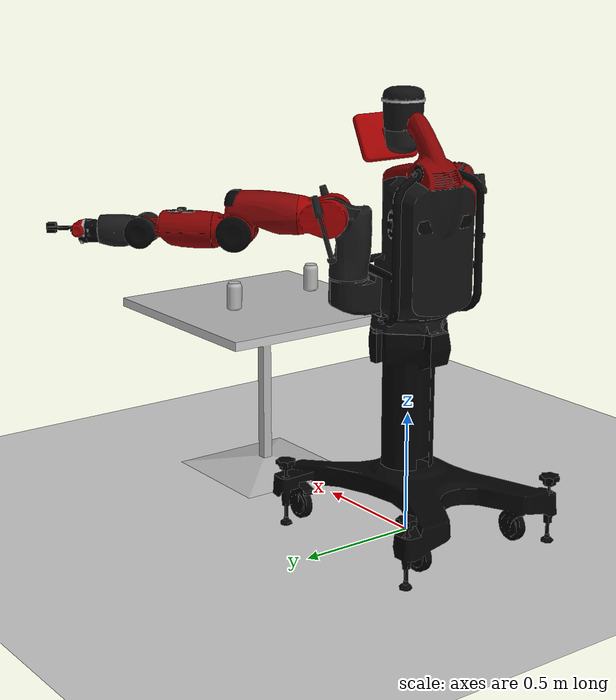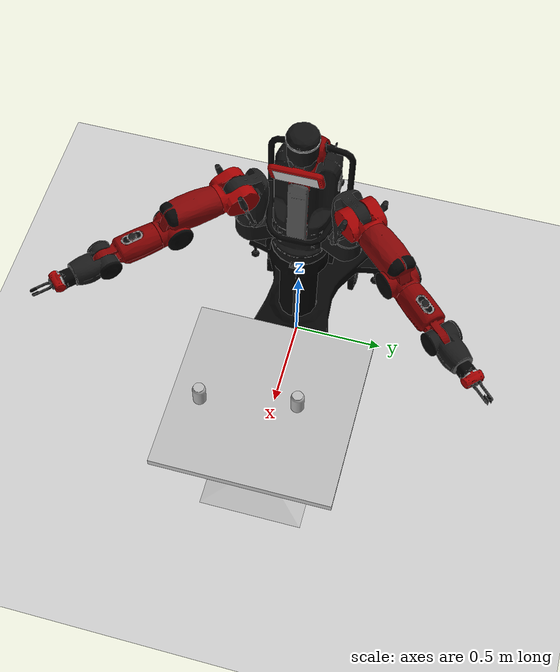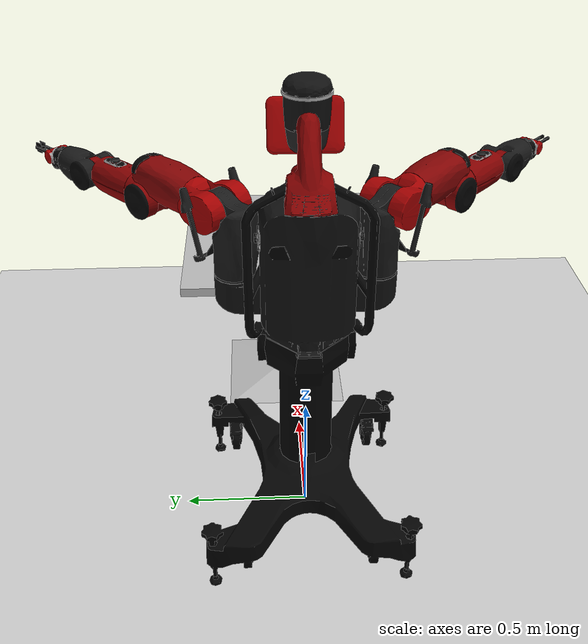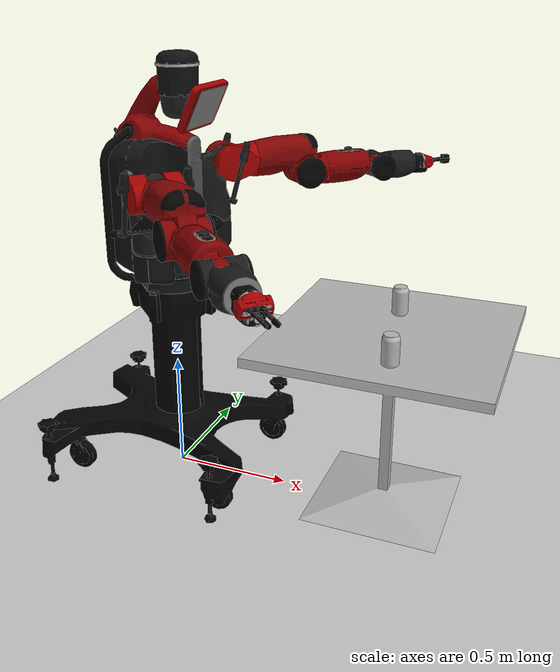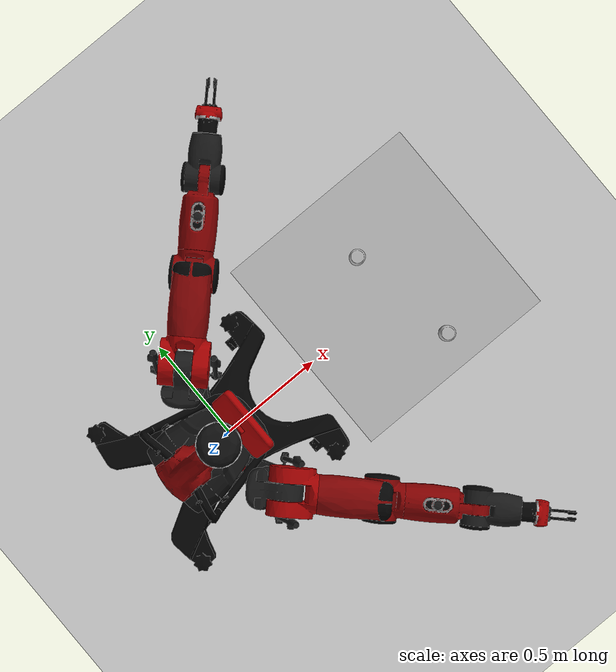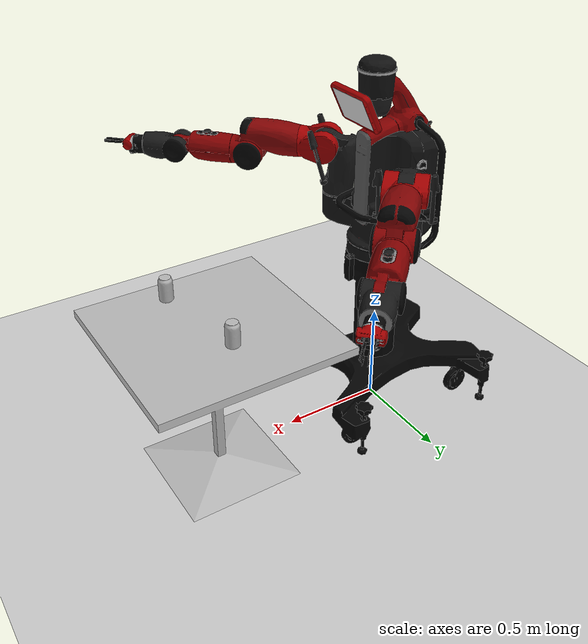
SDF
<sdf version="1.7">
 <world name="default">
  <model name="ground_plane">
   <static>1</static>
   <link name="link">
    <collision name="collision">
     <geometry><plane><normal>0 0 1</normal><size>100 100</size></plane></geometry>
     <surface>
      <contact><collide_bitmask>65535</collide_bitmask></contact>
      <friction><ode><mu>100</mu><mu2>50</mu2></ode></friction>
     </surface>
    </collision>
    <visual name="visual">
     <cast_shadows>0</cast_shadows>
     <geometry><plane><normal>0 0 1</normal><size>100 100</size></plane></geometry>
     <material>
      <script><uri>file://media/materials/scripts/gazebo.material</uri><name>Gazebo/Grey</name></script>
     </material>
    </visual>
   </link>
  </model>
  <light name="sun" type="directional">
   <pose>0 0 10 0 -0 0</pose>
   <diffuse>0.8 0.8 0.8 1</diffuse>
   <specular>0.2 0.2 0.2 1</specular>
   <attenuation>
    <range>1000</range>
    <constant>0.9</constant>
    <linear>0.01</linear>
    <quadratic>0.001</quadratic>
   </attenuation>
   <direction>-0.5 0.1 -0.9</direction>
   <spot><inner_angle>0</inner_angle><outer_angle>0</outer_angle><falloff>0</falloff></spot>
  </light>
  <physics type="ode">
   <real_time_update_rate>1000</real_time_update_rate>
   <max_step_size>0.001</max_step_size>
   <real_time_factor>1</real_time_factor>
  </physics>
  <gravity>0 0 -9.81</gravity>
  <magnetic_field>6e-06 2.3e-05 -4.2e-05</magnetic_field>
  <atmosphere type="adiabatic"/>
  <scene><ambient>0.4 0.4 0.4 1</ambient><background>0.7 0.7 0.7 1</background><shadows>1</shadows></scene>
  <audio><device>default</device></audio>
  <spherical_coordinates>
   <surface_model>EARTH_WGS84</surface_model>
   <latitude_deg>0</latitude_deg>
   <longitude_deg>0</longitude_deg>
   <elevation>0</elevation>
   <heading_deg>0</heading_deg>
  </spherical_coordinates>
  <model name="baxter">
   <joint name="fixed" type="fixed">
    <pose relative_to="__model__">0 0 0 0 -0 0</pose>
    <parent>world</parent>
    <child>base</child>
   </joint>
   <link name="base">
    <pose relative_to="fixed">0 0 0 0 -0 0</pose>
    <inertial>
     <pose>0 -0 3e-06 0 -0 0</pose>
     <mass>96.2011</mass>
     <inertia>
      <ixx>6.91297</ixx>
      <ixy>0.00068017</ixy>
      <ixz>0.64779</ixz>
      <iyy>7.74978</iyy>
      <iyz>0.00434511</iyz>
      <izz>5.76418</izz>
     </inertia>
    </inertial>
    <collision name="base_fixed_joint_lump__collision_head_link_1_collision">
     <pose>0.04 -0.04 0.75 0 -0 0</pose>
     <geometry><sphere><radius>0.22</radius></sphere></geometry>
    </collision>
    <collision name="base_fixed_joint_lump__collision_head_link_2_collision_1">
     <pose>0.04 0.04 0.75 0 -0 0</pose>
     <geometry><sphere><radius>0.22</radius></sphere></geometry>
    </collision>
    <collision name="base_fixed_joint_lump__torso_collision_2">
     <geometry>
      <mesh>
       <scale>1 1 1</scale>
       <uri>/home/dan/data/sauce/robotics/ros/baxter_moveit/src/baxter_common/baxter_description/meshes/torso/base_link_collision.DAE</uri>
      </mesh>
     </geometry>
    </collision>
    <collision name="base_fixed_joint_lump__pedestal_collision_3">
     <geometry>
      <mesh>
       <scale>1 1 1</scale>
       <uri>/home/dan/data/sauce/robotics/ros/baxter_moveit/src/baxter_common/baxter_description/meshes/base/pedestal_link_collision.DAE</uri>
      </mesh>
     </geometry>
    </collision>
    <collision name="base_fixed_joint_lump__sonar_ring_collision_4">
     <pose>0.0947 0 0.817 0 -0 0</pose>
     <geometry><sphere><radius>0.001</radius></sphere></geometry>
    </collision>
    <visual name="base_fixed_joint_lump__collision_head_link_1_visual">
     <pose>0.11 0 0.75 0 -0 0</pose>
     <geometry><sphere><radius>0.001</radius></sphere></geometry>
    </visual>
    <visual name="base_fixed_joint_lump__collision_head_link_2_visual_1">
     <pose>0.11 0 0.75 0 -0 0</pose>
     <geometry><sphere><radius>0.001</radius></sphere></geometry>
    </visual>
    <visual name="base_fixed_joint_lump__torso_visual_2">
     <geometry>
      <mesh>
       <scale>1 1 1</scale>
       <uri>/home/dan/data/sauce/robotics/ros/baxter_moveit/src/baxter_common/baxter_description/meshes/torso/base_link.DAE</uri>
      </mesh>
     </geometry>
    </visual>
    <visual name="base_fixed_joint_lump__pedestal_visual_3">
     <geometry>
      <mesh>
       <scale>1 1 1</scale>
       <uri>/home/dan/data/sauce/robotics/ros/baxter_moveit/src/baxter_common/baxter_description/meshes/base/PEDESTAL.DAE</uri>
      </mesh>
     </geometry>
    </visual>
    <visual name="base_fixed_joint_lump__sonar_ring_visual_4">
     <pose>0.06 0 0.82653 0 -0 0</pose>
     <geometry><cylinder><length>0.01</length><radius>0.085</radius></cylinder></geometry>
    </visual>
    <self_collide>1</self_collide>
    <sensor name="sonar" type="ray">
     <ray>
      <scan>
       <horizontal>
        <samples>12</samples>
        <resolution>1</resolution>
        <min_angle>-3.14</min_angle>
        <max_angle>3.14</max_angle>
       </horizontal>
       <vertical>
        <samples>2</samples>
        <resolution>1</resolution>
        <min_angle>-0.001</min_angle>
        <max_angle>0</max_angle>
       </vertical>
      </scan>
      <range><min>0.05</min><max>50</max></range>
     </ray>
     <plugin name="sonar_plugin" filename="libgazebo_ros_block_laser.so">
      <gaussianNoise>0.00</gaussianNoise>
      <alwaysOn>1</alwaysOn>
      <updateRate>100.0</updateRate>
      <topicName>/robot/sonar/head_sonar/state</topicName>
      <frameName>sonar_ring</frameName>
      <robotNamespace>/</robotNamespace>
     </plugin>
     <always_on>1</always_on>
     <update_rate>100</update_rate>
     <pose>0.0947 0 0.817 0 -0 0</pose>
    </sensor>
   </link>
   <joint name="head_pan" type="revolute">
    <pose relative_to="base">0.06 0 0.686 0 -0 0</pose>
    <parent>base</parent>
    <child>head</child>
    <axis>
     <xyz>0 0 1</xyz>
     <limit><lower>-1.3963</lower><upper>1.3963</upper><effort>50000</effort><velocity>10000</velocity></limit>
     <dynamics>
      <damping>0.7</damping>
      <friction>0</friction>
      <spring_reference>0</spring_reference>
      <spring_stiffness>0</spring_stiffness>
     </dynamics>
    </axis>
    <physics>
     <ode>
      <implicit_spring_damper>1</implicit_spring_damper>
      <cfm_damping>1</cfm_damping>
      <limit><cfm>0</cfm><erp>0.2</erp></limit>
     </ode>
    </physics>
   </joint>
   <link name="head">
    <pose relative_to="head_pan">0 0 0 0 -0 0</pose>
    <inertial>
     <pose>0.054677 0 5e-06 0 -0 0</pose>
     <mass>0.988238</mass>
     <inertia>
      <ixx>0.00620194</ixx>
      <ixy>0.000202093</ixy>
      <ixz>0.000495898</ixz>
      <iyy>0.010977</iyy>
      <iyz>-0.00109806</iyz>
      <izz>0.00983914</izz>
     </inertia>
    </inertial>
    <collision name="head_collision"><geometry><sphere><radius>0.001</radius></sphere></geometry></collision>
    <collision name="head_fixed_joint_lump__screen_collision_1">
     <pose>0.1227 0 0 1.75057 0 1.5708</pose>
     <geometry><sphere><radius>0.001</radius></sphere></geometry>
    </collision>
    <visual name="head_visual">
     <pose>0 0 0.00953 0 -0 0</pose>
     <geometry>
      <mesh>
       <scale>1 1 1</scale>
       <uri>/home/dan/data/sauce/robotics/ros/baxter_moveit/src/baxter_common/baxter_description/meshes/head/H0.DAE</uri>
      </mesh>
     </geometry>
    </visual>
    <visual name="head_fixed_joint_lump__screen_visual_1">
     <pose>0.086855 0 -0.003172 1.5708 0.179774 0</pose>
     <geometry>
      <mesh>
       <scale>1 1 1</scale>
       <uri>/home/dan/data/sauce/robotics/ros/baxter_moveit/src/baxter_common/baxter_description/meshes/head/H1.DAE</uri>
      </mesh>
     </geometry>
    </visual>
    <visual name="head_fixed_joint_lump__display_visual_2">
     <pose>0.119839 0 -0.015742 2.01237 0 1.5708</pose>
     <geometry><box><size>0.218 0.16 0.001</size></box></geometry>
     <plugin name="screen_video_controller" filename="libgazebo_ros_video.so">
      <height>600</height>
      <width>1024</width>
      <topicName>/robot/xdisplay</topicName>
      <robotNamespace>/</robotNamespace>
     </plugin>
    </visual>
    <sensor name="head_camera" type="camera">
     <update_rate>30</update_rate>
     <camera name="head_camera">
      <pose>0 0.21 0 -0 -0.8 -1.5708</pose>
      <horizontal_fov>1.39626</horizontal_fov>
      <image><width>800</width><height>800</height><format>R8G8B8</format></image>
      <clip><near>0.02</near><far>300</far></clip>
      <noise><type>gaussian</type><mean>0</mean><stddev>0.007</stddev></noise>
     </camera>
     <plugin name="camera_controller" filename="libgazebo_ros_camera.so">
      <alwaysOn>1</alwaysOn>
      <updateRate>0.0</updateRate>
      <cameraName>head_camera</cameraName>
      <imageTopicName>image</imageTopicName>
      <cameraInfoTopicName>camera_info</cameraInfoTopicName>
      <frameName>head_camera</frameName>
      <hackBaseline>0.07</hackBaseline>
      <distortionK1>0.0</distortionK1>
      <distortionK2>0.0</distortionK2>
      <distortionK3>0.0</distortionK3>
      <distortionT1>0.0</distortionT1>
      <distortionT2>0.0</distortionT2>
      <robotNamespace>/cameras</robotNamespace>
     </plugin>
     <pose>0.12839 0 0.06368 1.75057 0 1.5708</pose>
    </sensor>
   </link>
   <joint name="left_s0" type="revolute">
    <pose relative_to="base">0.064027 0.259027 0.129626 0 -0 0.7854</pose>
    <parent>base</parent>
    <child>left_upper_shoulder</child>
    <axis>
     <xyz>0 0 1</xyz>
     <limit><lower>-1.70168</lower><upper>1.70168</upper><effort>50</effort><velocity>1.5</velocity></limit>
     <dynamics>
      <damping>0.7</damping>
      <friction>0</friction>
      <spring_reference>0</spring_reference>
      <spring_stiffness>0</spring_stiffness>
     </dynamics>
    </axis>
    <physics>
     <ode>
      <implicit_spring_damper>1</implicit_spring_damper>
      <cfm_damping>1</cfm_damping>
      <limit><cfm>0</cfm><erp>0.2</erp></limit>
     </ode>
    </physics>
   </joint>
   <link name="left_upper_shoulder">
    <pose relative_to="left_s0">0 0 0 0 -0 0</pose>
    <inertial>
     <pose>0.01783 0.00086 0.19127 0 -0 0</pose>
     <mass>5.70044</mass>
     <inertia>
      <ixx>0.047091</ixx>
      <ixy>0.000127876</ixy>
      <ixz>0.0061487</ixz>
      <iyy>0.0376698</iyy>
      <iyz>0.000780869</iyz>
      <izz>0.0359599</izz>
     </inertia>
    </inertial>
    <collision name="left_upper_shoulder_collision">
     <pose>0 0 0.1361 0 -0 0</pose>
     <geometry><cylinder><length>0.2722</length><radius>0.06</radius></cylinder></geometry>
    </collision>
    <visual name="left_upper_shoulder_visual">
     <geometry>
      <mesh>
       <scale>1 1 1</scale>
       <uri>/home/dan/data/sauce/robotics/ros/baxter_moveit/src/baxter_common/baxter_description/meshes/upper_shoulder/S0.DAE</uri>
      </mesh>
     </geometry>
    </visual>
   </link>
   <joint name="left_s1" type="revolute">
    <pose relative_to="left_upper_shoulder">0.069 0 0.27035 -1.5708 0 0</pose>
    <parent>left_upper_shoulder</parent>
    <child>left_lower_shoulder</child>
    <axis>
     <xyz>0 0 1</xyz>
     <limit><lower>-2.147</lower><upper>1.047</upper><effort>50</effort><velocity>1.5</velocity></limit>
     <dynamics>
      <damping>0.7</damping>
      <friction>0</friction>
      <spring_reference>0</spring_reference>
      <spring_stiffness>0</spring_stiffness>
     </dynamics>
    </axis>
    <physics>
     <ode>
      <implicit_spring_damper>1</implicit_spring_damper>
      <cfm_damping>1</cfm_damping>
      <limit><cfm>0</cfm><erp>0.2</erp></limit>
     </ode>
    </physics>
   </joint>
   <link name="left_lower_shoulder">
    <pose relative_to="left_s1">0 0 0 0 -0 0</pose>
    <inertial>
     <pose>0.068451 0.00269 -0.00529 0 -0 0</pose>
     <mass>3.22708</mass>
     <inertia>
      <ixx>0.0117521</ixx>
      <ixy>-0.000300954</ixy>
      <ixz>0.00207674</ixz>
      <iyy>0.0278861</iyy>
      <iyz>-0.000188219</iyz>
      <izz>0.0207877</izz>
     </inertia>
    </inertial>
    <collision name="left_lower_shoulder_collision">
     <geometry><cylinder><length>0.12</length><radius>0.06</radius></cylinder></geometry>
    </collision>
    <collision name="left_lower_shoulder_fixed_joint_lump__left_upper_elbow_visual_collision_1">
     <pose>0.2435 -0 0 1.5708 -0 1.5708</pose>
     <geometry><cylinder><length>0.273</length><radius>0.06</radius></cylinder></geometry>
    </collision>
    <visual name="left_lower_shoulder_visual">
     <geometry>
      <mesh>
       <scale>1 1 1</scale>
       <uri>/home/dan/data/sauce/robotics/ros/baxter_moveit/src/baxter_common/baxter_description/meshes/lower_shoulder/S1.DAE</uri>
      </mesh>
     </geometry>
    </visual>
   </link>
   <joint name="left_e0" type="revolute">
    <pose relative_to="left_lower_shoulder">0.102 0 0 1.5708 -0 1.5708</pose>
    <parent>left_lower_shoulder</parent>
    <child>left_upper_elbow</child>
    <axis>
     <xyz>0 0 1</xyz>
     <limit><lower>-3.05418</lower><upper>3.05418</upper><effort>50</effort><velocity>1.5</velocity></limit>
     <dynamics>
      <damping>0.7</damping>
      <friction>0</friction>
      <spring_reference>0</spring_reference>
      <spring_stiffness>0</spring_stiffness>
     </dynamics>
    </axis>
    <physics>
     <ode>
      <implicit_spring_damper>1</implicit_spring_damper>
      <cfm_damping>1</cfm_damping>
      <limit><cfm>0</cfm><erp>0.2</erp></limit>
     </ode>
    </physics>
   </joint>
   <link name="left_upper_elbow">
    <pose relative_to="left_e0">0 0 0 0 -0 0</pose>
    <inertial>
     <pose>-0.00276 0.00132 0.18086 0 -0 0</pose>
     <mass>4.31272</mass>
     <inertia>
      <ixx>0.0266173</ixx>
      <ixy>0.000292706</ixy>
      <ixz>0.0039219</ixz>
      <iyy>0.0284436</iyy>
      <iyz>0.00108389</iyz>
      <izz>0.0124801</izz>
     </inertia>
    </inertial>
    <collision name="left_upper_elbow_collision">
     <pose>0 0 -0.0535 0 -0 0</pose>
     <geometry><cylinder><length>0.107</length><radius>0.06</radius></cylinder></geometry>
    </collision>
    <visual name="left_upper_elbow_visual">
     <geometry>
      <mesh>
       <scale>1 1 1</scale>
       <uri>/home/dan/data/sauce/robotics/ros/baxter_moveit/src/baxter_common/baxter_description/meshes/upper_elbow/E0.DAE</uri>
      </mesh>
     </geometry>
    </visual>
   </link>
   <joint name="left_e1" type="revolute">
    <pose relative_to="left_upper_elbow">0.069 0 0.26242 1.57079 -1.57079 3.14159</pose>
    <parent>left_upper_elbow</parent>
    <child>left_lower_elbow</child>
    <axis>
     <xyz>0 0 1</xyz>
     <limit><lower>-0.05</lower><upper>2.618</upper><effort>50</effort><velocity>1.5</velocity></limit>
     <dynamics>
      <damping>0.7</damping>
      <friction>0</friction>
      <spring_reference>0</spring_reference>
      <spring_stiffness>0</spring_stiffness>
     </dynamics>
    </axis>
    <physics>
     <ode>
      <implicit_spring_damper>1</implicit_spring_damper>
      <cfm_damping>1</cfm_damping>
      <limit><cfm>0</cfm><erp>0.2</erp></limit>
     </ode>
    </physics>
   </joint>
   <link name="left_lower_elbow">
    <pose relative_to="left_e1">0 0 0 0 -0 0</pose>
    <inertial>
     <pose>0.026113 0.00159 -0.011169 0 -0 0</pose>
     <mass>2.07216</mass>
     <inertia>
      <ixx>0.00711585</ixx>
      <ixy>0.000360372</ixy>
      <ixz>0.00074588</ixz>
      <iyy>0.0131827</iyy>
      <iyz>-0.000196632</iyz>
      <izz>0.00926891</izz>
     </inertia>
    </inertial>
    <collision name="left_lower_elbow_collision">
     <geometry><cylinder><length>0.1</length><radius>0.06</radius></cylinder></geometry>
    </collision>
    <collision name="left_lower_elbow_fixed_joint_lump__left_upper_forearm_visual_collision_1">
     <pose>0.224 -0 0 1.5708 -0 1.5708</pose>
     <geometry><cylinder><length>0.272</length><radius>0.06</radius></cylinder></geometry>
    </collision>
    <visual name="left_lower_elbow_visual">
     <geometry>
      <mesh>
       <scale>1 1 1</scale>
       <uri>/home/dan/data/sauce/robotics/ros/baxter_moveit/src/baxter_common/baxter_description/meshes/lower_elbow/E1.DAE</uri>
      </mesh>
     </geometry>
    </visual>
   </link>
   <joint name="left_w0" type="revolute">
    <pose relative_to="left_lower_elbow">0.10359 0 0 1.5708 -0 1.5708</pose>
    <parent>left_lower_elbow</parent>
    <child>left_upper_forearm</child>
    <axis>
     <xyz>0 0 1</xyz>
     <limit><lower>-3.059</lower><upper>3.059</upper><effort>15</effort><velocity>4</velocity></limit>
     <dynamics>
      <damping>0.7</damping>
      <friction>0</friction>
      <spring_reference>0</spring_reference>
      <spring_stiffness>0</spring_stiffness>
     </dynamics>
    </axis>
    <physics>
     <ode>
      <implicit_spring_damper>1</implicit_spring_damper>
      <cfm_damping>1</cfm_damping>
      <limit><cfm>0</cfm><erp>0.2</erp></limit>
     </ode>
    </physics>
   </joint>
   <link name="left_upper_forearm">
    <pose relative_to="left_w0">0 0 0 0 -0 0</pose>
    <inertial>
     <pose>-0.001682 0.0046 0.139519 0 -0 0</pose>
     <mass>2.24675</mass>
     <inertia>
      <ixx>0.0166775</ixx>
      <ixy>0.000184012</ixy>
      <ixz>0.000186469</ixz>
      <iyy>0.0167549</iyy>
      <iyz>-0.000647332</iyz>
      <izz>0.00374662</izz>
     </inertia>
    </inertial>
    <collision name="left_upper_forearm_collision">
     <pose>0 0 -0.044 0 -0 0</pose>
     <geometry><cylinder><length>0.088</length><radius>0.06</radius></cylinder></geometry>
    </collision>
    <visual name="left_upper_forearm_visual">
     <geometry>
      <mesh>
       <scale>1 1 1</scale>
       <uri>/home/dan/data/sauce/robotics/ros/baxter_moveit/src/baxter_common/baxter_description/meshes/upper_forearm/W0.DAE</uri>
      </mesh>
     </geometry>
    </visual>
   </link>
   <joint name="left_w1" type="revolute">
    <pose relative_to="left_upper_forearm">0.01 0 0.2707 1.57079 -1.57079 3.14159</pose>
    <parent>left_upper_forearm</parent>
    <child>left_lower_forearm</child>
    <axis>
     <xyz>0 0 1</xyz>
     <limit><lower>-1.5708</lower><upper>2.094</upper><effort>15</effort><velocity>4</velocity></limit>
     <dynamics>
      <damping>0.7</damping>
      <friction>0</friction>
      <spring_reference>0</spring_reference>
      <spring_stiffness>0</spring_stiffness>
     </dynamics>
    </axis>
    <physics>
     <ode>
      <implicit_spring_damper>1</implicit_spring_damper>
      <cfm_damping>1</cfm_damping>
      <limit><cfm>0</cfm><erp>0.2</erp></limit>
     </ode>
    </physics>
   </joint>
   <link name="left_lower_forearm">
    <pose relative_to="left_w1">0 0 0 0 -0 0</pose>
    <inertial>
     <pose>0.06041 0.00697 0.006 0 -0 0</pose>
     <mass>1.60979</mass>
     <inertia>
      <ixx>0.00387607</ixx>
      <ixy>-0.000443848</ixy>
      <ixz>-0.00021115</ixz>
      <iyy>0.00700538</iyy>
      <iyz>0.000153481</iyz>
      <izz>0.00552755</izz>
     </inertia>
    </inertial>
    <collision name="left_lower_forearm_collision">
     <geometry><cylinder><length>0.1</length><radius>0.06</radius></cylinder></geometry>
    </collision>
    <visual name="left_lower_forearm_visual">
     <geometry>
      <mesh>
       <scale>1 1 1</scale>
       <uri>/home/dan/data/sauce/robotics/ros/baxter_moveit/src/baxter_common/baxter_description/meshes/lower_forearm/W1.DAE</uri>
      </mesh>
     </geometry>
    </visual>
   </link>
   <joint name="left_w2" type="revolute">
    <pose relative_to="left_lower_forearm">0.115975 0 0 1.5708 -0 1.5708</pose>
    <parent>left_lower_forearm</parent>
    <child>left_wrist</child>
    <axis>
     <xyz>0 0 1</xyz>
     <limit><lower>-3.059</lower><upper>3.059</upper><effort>15</effort><velocity>4</velocity></limit>
     <dynamics>
      <damping>0.7</damping>
      <friction>0</friction>
      <spring_reference>0</spring_reference>
      <spring_stiffness>0</spring_stiffness>
     </dynamics>
    </axis>
    <physics>
     <ode>
      <implicit_spring_damper>1</implicit_spring_damper>
      <cfm_damping>1</cfm_damping>
      <limit><cfm>0</cfm><erp>0.2</erp></limit>
     </ode>
    </physics>
   </joint>
   <link name="left_wrist">
    <pose relative_to="left_w2">0 0 0 0 -0 0</pose>
    <inertial>
     <pose>0.003318 0.000616 0.079435 0 -0 0</pose>
     <mass>0.84268</mass>
     <inertia>
      <ixx>0.00285059</ixx>
      <ixy>7.17373e-06</ixy>
      <ixz>2.52032e-05</ixz>
      <iyy>0.00291735</iyy>
      <iyz>2.17353e-05</iyz>
      <izz>0.000560608</izz>
     </inertia>
    </inertial>
    <collision name="left_wrist_collision">
     <geometry><cylinder><length>0.165</length><radius>0.06</radius></cylinder></geometry>
    </collision>
    <collision name="left_wrist_fixed_joint_lump__left_hand_collision_1">
     <pose>0 0 0.09035 0 -0 0</pose>
     <geometry><cylinder><length>0.0464</length><radius>0.04</radius></cylinder></geometry>
    </collision>
    <collision name="left_wrist_fixed_joint_lump__left_gripper_base_collision_2">
     <pose>0 0 0.13855 1.5708 -0 3.14159</pose>
     <geometry><cylinder><length>0.1</length><radius>0.029</radius></cylinder></geometry>
    </collision>
    <visual name="left_wrist_visual">
     <geometry>
      <mesh>
       <scale>1 1 1</scale>
       <uri>/home/dan/data/sauce/robotics/ros/baxter_moveit/src/baxter_common/baxter_description/meshes/wrist/W2.DAE</uri>
      </mesh>
     </geometry>
    </visual>
    <visual name="left_wrist_fixed_joint_lump__left_gripper_base_visual_1">
     <pose>0 0 0.13855 1.5708 -0 3.14159</pose>
     <geometry>
      <mesh>
       <scale>1 1 1</scale>
       <uri>/home/dan/data/sauce/robotics/ros/baxter_moveit/src/baxter_common/rethink_ee_description/meshes/electric_gripper/electric_gripper_base.DAE</uri>
      </mesh>
     </geometry>
    </visual>
    <visual name="left_wrist_fixed_joint_lump__left_hand_accelerometer_visual_2">
     <pose>0.00198 0.000133 0.09895 0 -0 0</pose>
     <geometry><box><size>0.01 0.01 0.01</size></box></geometry>
    </visual>
    <visual name="left_wrist_fixed_joint_lump__left_hand_camera_visual_3">
     <pose>0.03825 0.012 0.128905 0 0 -1.5708</pose>
     <geometry><cylinder><length>0.01</length><radius>0.02</radius></cylinder></geometry>
    </visual>
    <visual name="left_wrist_fixed_joint_lump__left_hand_range_visual_4">
     <pose>0.032 -0.020245 0.14235 1.57079 -1.57079 3.14159</pose>
     <geometry><box><size>0.005 0.02 0.005</size></box></geometry>
    </visual>
    <sensor name="left_hand_camera" type="camera">
     <update_rate>30</update_rate>
     <camera name="left_hand_camera">
      <pose>0 0 0 -1.57079 -1.57079 3.14159</pose>
      <horizontal_fov>1.39626</horizontal_fov>
      <image><width>800</width><height>800</height><format>R8G8B8</format></image>
      <clip><near>0.02</near><far>300</far></clip>
      <noise><type>gaussian</type><mean>0</mean><stddev>0.007</stddev></noise>
     </camera>
     <plugin name="camera_controller" filename="libgazebo_ros_camera.so">
      <alwaysOn>1</alwaysOn>
      <updateRate>0.0</updateRate>
      <cameraName>left_hand_camera</cameraName>
      <imageTopicName>image</imageTopicName>
      <cameraInfoTopicName>camera_info</cameraInfoTopicName>
      <frameName>left_hand_camera</frameName>
      <hackBaseline>0.07</hackBaseline>
      <distortionK1>0.0</distortionK1>
      <distortionK2>0.0</distortionK2>
      <distortionK3>0.0</distortionK3>
      <distortionT1>0.0</distortionT1>
      <distortionT2>0.0</distortionT2>
      <robotNamespace>/cameras</robotNamespace>
     </plugin>
     <pose>0.03825 0.012 0.128905 0 0 -1.5708</pose>
    </sensor>
    <sensor name="ir_left" type="ray">
     <ray>
      <scan>
       <horizontal>
        <samples>1</samples>
        <resolution>1</resolution>
        <min_angle>-0.5</min_angle>
        <max_angle>0.5</max_angle>
       </horizontal>
       <vertical><samples>1</samples><min_angle>0</min_angle><max_angle>0</max_angle></vertical>
      </scan>
      <range><min>0.004</min><max>0.4</max></range>
     </ray>
     <plugin name="plugin_4" filename="libgazebo_ros_laser.so">
      <gaussianNoise>0.005</gaussianNoise>
      <alwaysOn>1</alwaysOn>
      <updateRate>100</updateRate>
      <topicName>/sim/laserscan/left_hand_range/state</topicName>
      <frameName>left_hand_range</frameName>
      <robotNamespace>/</robotNamespace>
     </plugin>
     <always_on>1</always_on>
     <update_rate>100</update_rate>
     <pose>0.032 -0.020245 0.14235 3.14159 -1.57079 1.57079</pose>
    </sensor>
   </link>
   <joint name="l_gripper_l_finger_joint" type="prismatic">
    <pose relative_to="left_wrist">0 -0.0015 0.15855 0 -0 0</pose>
    <parent>left_wrist</parent>
    <child>l_gripper_l_finger</child>
    <axis>
     <xyz>0 1 0</xyz>
     <limit><lower>0</lower><upper>0.020833</upper><effort>20</effort><velocity>5</velocity></limit>
     <dynamics>
      <damping>0.7</damping>
      <friction>0</friction>
      <spring_reference>0</spring_reference>
      <spring_stiffness>0</spring_stiffness>
     </dynamics>
    </axis>
    <physics>
     <ode>
      <implicit_spring_damper>1</implicit_spring_damper>
      <cfm_damping>1</cfm_damping>
      <limit><cfm>0</cfm><erp>0.2</erp></limit>
     </ode>
    </physics>
   </joint>
   <link name="l_gripper_l_finger">
    <pose relative_to="l_gripper_l_finger_joint">0 0 0 0 -0 0</pose>
    <inertial>
     <pose>0 0.00575 0.037567 0 0 -3.14159</pose>
     <mass>0.03</mass>
     <inertia>
      <ixx>0.0200867</ixx>
      <ixy>-2.42939e-22</ixy>
      <ixz>1.5872e-21</ixz>
      <iyy>0.0200847</iyy>
      <iyz>1.29605e-05</iyz>
      <izz>0.020002</izz>
     </inertia>
    </inertial>
    <collision name="l_gripper_l_finger_collision">
     <pose>0 0.01725 0.0615 0 0 -3.14159</pose>
     <geometry><box><size>0.01 0.0135 0.1127</size></box></geometry>
     <surface>
      <contact><ode><kp>100000</kp><kd>1</kd></ode></contact>
      <friction><ode><mu>1000</mu><mu2>1000</mu2><fdir1>0 0 1</fdir1></ode></friction>
     </surface>
    </collision>
    <collision name="l_gripper_l_finger_collision_1">
     <pose>-0.005 -0.003 0.0083 0 0 -3.14159</pose>
     <geometry><box><size>0.01 0.05 0.017</size></box></geometry>
     <surface>
      <contact><ode><kp>100000</kp><kd>1</kd></ode></contact>
      <friction><ode><mu>1000</mu><mu2>1000</mu2><fdir1>0 0 1</fdir1></ode></friction>
     </surface>
    </collision>
    <collision name="l_gripper_l_finger_tip_collision_2">
     <pose>0 0.01275 0.0977 0 -0 3.14159</pose>
     <geometry><box><size>0.042 0.0065 0.037</size></box></geometry>
     <surface>
      <contact><ode><kp>100000</kp><kd>1</kd></ode></contact>
      <friction><ode><mu>1000</mu><mu2>1000</mu2><fdir1>0 0 1</fdir1></ode></friction>
     </surface>
    </collision>
    <visual name="l_gripper_l_finger_visual">
     <pose>0 0 0 0 0 -3.14159</pose>
     <geometry>
      <mesh>
       <scale>1 1 1</scale>
       <uri>/home/dan/data/sauce/robotics/ros/baxter_moveit/src/baxter_common/rethink_ee_description/meshes/electric_gripper/fingers/extended_narrow.DAE</uri>
      </mesh>
     </geometry>
    </visual>
    <visual name="l_gripper_l_finger_tip_visual_1">
     <pose>0 0.01725 0.1127 0 -0 3.14159</pose>
     <geometry>
      <mesh>
       <scale>1 1 1</scale>
       <uri>/home/dan/data/sauce/robotics/ros/baxter_moveit/src/baxter_common/rethink_ee_description/meshes/electric_gripper/fingers/paddle_tip.DAE</uri>
      </mesh>
     </geometry>
    </visual>
   </link>
   <joint name="l_gripper_r_finger_joint" type="prismatic">
    <pose relative_to="left_wrist">0 0.0015 0.15855 0 -0 0</pose>
    <parent>left_wrist</parent>
    <child>l_gripper_r_finger</child>
    <axis>
     <xyz>0 1 0</xyz>
     <limit><lower>-0.020833</lower><upper>0</upper><effort>20</effort><velocity>5</velocity></limit>
     <dynamics>
      <damping>0.7</damping>
      <friction>0</friction>
      <spring_reference>0</spring_reference>
      <spring_stiffness>0</spring_stiffness>
     </dynamics>
    </axis>
    <physics>
     <ode>
      <implicit_spring_damper>1</implicit_spring_damper>
      <cfm_damping>1</cfm_damping>
      <limit><cfm>0</cfm><erp>0.2</erp></limit>
     </ode>
    </physics>
   </joint>
   <link name="l_gripper_r_finger">
    <pose relative_to="l_gripper_r_finger_joint">0 0 0 0 -0 0</pose>
    <inertial>
     <pose>0 -0.00575 0.037567 0 -0 0</pose>
     <mass>0.03</mass>
     <inertia>
      <ixx>0.0200867</ixx>
      <ixy>0</ixy>
      <ixz>0</ixz>
      <iyy>0.0200847</iyy>
      <iyz>1.29605e-05</iyz>
      <izz>0.020002</izz>
     </inertia>
    </inertial>
    <collision name="l_gripper_r_finger_collision">
     <pose>0 -0.01725 0.0615 0 -0 0</pose>
     <geometry><box><size>0.01 0.0135 0.1127</size></box></geometry>
     <surface>
      <contact><ode><kp>100000</kp><kd>1</kd></ode></contact>
      <friction><ode><mu>1000</mu><mu2>1000</mu2><fdir1>0 0 1</fdir1></ode></friction>
     </surface>
    </collision>
    <collision name="l_gripper_r_finger_collision_1">
     <pose>0.005 0.003 0.0083 0 -0 0</pose>
     <geometry><box><size>0.01 0.05 0.017</size></box></geometry>
     <surface>
      <contact><ode><kp>100000</kp><kd>1</kd></ode></contact>
      <friction><ode><mu>1000</mu><mu2>1000</mu2><fdir1>0 0 1</fdir1></ode></friction>
     </surface>
    </collision>
    <collision name="l_gripper_r_finger_tip_collision_2">
     <pose>0 -0.01275 0.0977 0 -0 0</pose>
     <geometry><box><size>0.042 0.0065 0.037</size></box></geometry>
     <surface>
      <contact><ode><kp>100000</kp><kd>1</kd></ode></contact>
      <friction><ode><mu>1000</mu><mu2>1000</mu2><fdir1>0 0 1</fdir1></ode></friction>
     </surface>
    </collision>
    <visual name="l_gripper_r_finger_visual">
     <geometry>
      <mesh>
       <scale>1 1 1</scale>
       <uri>/home/dan/data/sauce/robotics/ros/baxter_moveit/src/baxter_common/rethink_ee_description/meshes/electric_gripper/fingers/extended_narrow.DAE</uri>
      </mesh>
     </geometry>
    </visual>
    <visual name="l_gripper_r_finger_tip_visual_1">
     <pose>0 -0.01725 0.1127 0 -0 0</pose>
     <geometry>
      <mesh>
       <scale>1 1 1</scale>
       <uri>/home/dan/data/sauce/robotics/ros/baxter_moveit/src/baxter_common/rethink_ee_description/meshes/electric_gripper/fingers/paddle_tip.DAE</uri>
      </mesh>
     </geometry>
    </visual>
   </link>
   <joint name="right_s0" type="revolute">
    <pose relative_to="base">0.064027 -0.259027 0.129626 0 0 -0.7854</pose>
    <parent>base</parent>
    <child>right_upper_shoulder</child>
    <axis>
     <xyz>0 0 1</xyz>
     <limit><lower>-1.70168</lower><upper>1.70168</upper><effort>50</effort><velocity>1.5</velocity></limit>
     <dynamics>
      <damping>0.7</damping>
      <friction>0</friction>
      <spring_reference>0</spring_reference>
      <spring_stiffness>0</spring_stiffness>
     </dynamics>
    </axis>
    <physics>
     <ode>
      <implicit_spring_damper>1</implicit_spring_damper>
      <cfm_damping>1</cfm_damping>
      <limit><cfm>0</cfm><erp>0.2</erp></limit>
     </ode>
    </physics>
   </joint>
   <link name="right_upper_shoulder">
    <pose relative_to="right_s0">0 0 0 0 -0 0</pose>
    <inertial>
     <pose>0.01783 0.00086 0.19127 0 -0 0</pose>
     <mass>5.70044</mass>
     <inertia>
      <ixx>0.047091</ixx>
      <ixy>0.000127876</ixy>
      <ixz>0.0061487</ixz>
      <iyy>0.0376698</iyy>
      <iyz>0.000780869</iyz>
      <izz>0.0359599</izz>
     </inertia>
    </inertial>
    <collision name="right_upper_shoulder_collision">
     <pose>0 0 0.1361 0 -0 0</pose>
     <geometry><cylinder><length>0.2722</length><radius>0.06</radius></cylinder></geometry>
    </collision>
    <visual name="right_upper_shoulder_visual">
     <geometry>
      <mesh>
       <scale>1 1 1</scale>
       <uri>/home/dan/data/sauce/robotics/ros/baxter_moveit/src/baxter_common/baxter_description/meshes/upper_shoulder/S0.DAE</uri>
      </mesh>
     </geometry>
    </visual>
   </link>
   <joint name="right_s1" type="revolute">
    <pose relative_to="right_upper_shoulder">0.069 0 0.27035 -1.5708 0 0</pose>
    <parent>right_upper_shoulder</parent>
    <child>right_lower_shoulder</child>
    <axis>
     <xyz>0 0 1</xyz>
     <limit><lower>-2.147</lower><upper>1.047</upper><effort>50</effort><velocity>1.5</velocity></limit>
     <dynamics>
      <damping>0.7</damping>
      <friction>0</friction>
      <spring_reference>0</spring_reference>
      <spring_stiffness>0</spring_stiffness>
     </dynamics>
    </axis>
    <physics>
     <ode>
      <implicit_spring_damper>1</implicit_spring_damper>
      <cfm_damping>1</cfm_damping>
      <limit><cfm>0</cfm><erp>0.2</erp></limit>
     </ode>
    </physics>
   </joint>
   <link name="right_lower_shoulder">
    <pose relative_to="right_s1">0 0 0 0 -0 0</pose>
    <inertial>
     <pose>0.068451 0.00269 -0.00529 0 -0 0</pose>
     <mass>3.22708</mass>
     <inertia>
      <ixx>0.0117521</ixx>
      <ixy>-0.000300954</ixy>
      <ixz>0.00207674</ixz>
      <iyy>0.0278861</iyy>
      <iyz>-0.000188219</iyz>
      <izz>0.0207877</izz>
     </inertia>
    </inertial>
    <collision name="right_lower_shoulder_collision">
     <geometry><cylinder><length>0.12</length><radius>0.06</radius></cylinder></geometry>
    </collision>
    <collision name="right_lower_shoulder_fixed_joint_lump__right_upper_elbow_visual_collision_1">
     <pose>0.2435 -0 0 1.5708 -0 1.5708</pose>
     <geometry><cylinder><length>0.273</length><radius>0.06</radius></cylinder></geometry>
    </collision>
    <visual name="right_lower_shoulder_visual">
     <geometry>
      <mesh>
       <scale>1 1 1</scale>
       <uri>/home/dan/data/sauce/robotics/ros/baxter_moveit/src/baxter_common/baxter_description/meshes/lower_shoulder/S1.DAE</uri>
      </mesh>
     </geometry>
    </visual>
   </link>
   <joint name="right_e0" type="revolute">
    <pose relative_to="right_lower_shoulder">0.102 0 0 1.5708 -0 1.5708</pose>
    <parent>right_lower_shoulder</parent>
    <child>right_upper_elbow</child>
    <axis>
     <xyz>0 0 1</xyz>
     <limit><lower>-3.05418</lower><upper>3.05418</upper><effort>50</effort><velocity>1.5</velocity></limit>
     <dynamics>
      <damping>0.7</damping>
      <friction>0</friction>
      <spring_reference>0</spring_reference>
      <spring_stiffness>0</spring_stiffness>
     </dynamics>
    </axis>
    <physics>
     <ode>
      <implicit_spring_damper>1</implicit_spring_damper>
      <cfm_damping>1</cfm_damping>
      <limit><cfm>0</cfm><erp>0.2</erp></limit>
     </ode>
    </physics>
   </joint>
   <link name="right_upper_elbow">
    <pose relative_to="right_e0">0 0 0 0 -0 0</pose>
    <inertial>
     <pose>-0.00276 0.00132 0.18086 0 -0 0</pose>
     <mass>4.31272</mass>
     <inertia>
      <ixx>0.0266173</ixx>
      <ixy>0.000292706</ixy>
      <ixz>0.0039219</ixz>
      <iyy>0.0284436</iyy>
      <iyz>0.00108389</iyz>
      <izz>0.0124801</izz>
     </inertia>
    </inertial>
    <collision name="right_upper_elbow_collision">
     <pose>0 0 -0.0535 0 -0 0</pose>
     <geometry><cylinder><length>0.107</length><radius>0.06</radius></cylinder></geometry>
    </collision>
    <visual name="right_upper_elbow_visual">
     <geometry>
      <mesh>
       <scale>1 1 1</scale>
       <uri>/home/dan/data/sauce/robotics/ros/baxter_moveit/src/baxter_common/baxter_description/meshes/upper_elbow/E0.DAE</uri>
      </mesh>
     </geometry>
    </visual>
   </link>
   <joint name="right_e1" type="revolute">
    <pose relative_to="right_upper_elbow">0.069 0 0.26242 1.57079 -1.57079 3.14159</pose>
    <parent>right_upper_elbow</parent>
    <child>right_lower_elbow</child>
    <axis>
     <xyz>0 0 1</xyz>
     <limit><lower>-0.05</lower><upper>2.618</upper><effort>50</effort><velocity>1.5</velocity></limit>
     <dynamics>
      <damping>0.7</damping>
      <friction>0</friction>
      <spring_reference>0</spring_reference>
      <spring_stiffness>0</spring_stiffness>
     </dynamics>
    </axis>
    <physics>
     <ode>
      <implicit_spring_damper>1</implicit_spring_damper>
      <cfm_damping>1</cfm_damping>
      <limit><cfm>0</cfm><erp>0.2</erp></limit>
     </ode>
    </physics>
   </joint>
   <link name="right_lower_elbow">
    <pose relative_to="right_e1">0 0 0 0 -0 0</pose>
    <inertial>
     <pose>0.026113 0.00159 -0.011169 0 -0 0</pose>
     <mass>2.07216</mass>
     <inertia>
      <ixx>0.00711585</ixx>
      <ixy>0.000360372</ixy>
      <ixz>0.00074588</ixz>
      <iyy>0.0131827</iyy>
      <iyz>-0.000196632</iyz>
      <izz>0.00926891</izz>
     </inertia>
    </inertial>
    <collision name="right_lower_elbow_collision">
     <geometry><cylinder><length>0.1</length><radius>0.06</radius></cylinder></geometry>
    </collision>
    <collision name="right_lower_elbow_fixed_joint_lump__right_upper_forearm_visual_collision_1">
     <pose>0.224 -0 0 1.5708 -0 1.5708</pose>
     <geometry><cylinder><length>0.272</length><radius>0.06</radius></cylinder></geometry>
    </collision>
    <visual name="right_lower_elbow_visual">
     <geometry>
      <mesh>
       <scale>1 1 1</scale>
       <uri>/home/dan/data/sauce/robotics/ros/baxter_moveit/src/baxter_common/baxter_description/meshes/lower_elbow/E1.DAE</uri>
      </mesh>
     </geometry>
    </visual>
   </link>
   <joint name="right_w0" type="revolute">
    <pose relative_to="right_lower_elbow">0.10359 0 0 1.5708 -0 1.5708</pose>
    <parent>right_lower_elbow</parent>
    <child>right_upper_forearm</child>
    <axis>
     <xyz>0 0 1</xyz>
     <limit><lower>-3.059</lower><upper>3.059</upper><effort>15</effort><velocity>4</velocity></limit>
     <dynamics>
      <damping>0.7</damping>
      <friction>0</friction>
      <spring_reference>0</spring_reference>
      <spring_stiffness>0</spring_stiffness>
     </dynamics>
    </axis>
    <physics>
     <ode>
      <implicit_spring_damper>1</implicit_spring_damper>
      <cfm_damping>1</cfm_damping>
      <limit><cfm>0</cfm><erp>0.2</erp></limit>
     </ode>
    </physics>
   </joint>
   <link name="right_upper_forearm">
    <pose relative_to="right_w0">0 0 0 0 -0 0</pose>
    <inertial>
     <pose>-0.001682 0.0046 0.139519 0 -0 0</pose>
     <mass>2.24675</mass>
     <inertia>
      <ixx>0.0166775</ixx>
      <ixy>0.000184012</ixy>
      <ixz>0.000186469</ixz>
      <iyy>0.0167549</iyy>
      <iyz>-0.000647332</iyz>
      <izz>0.00374662</izz>
     </inertia>
    </inertial>
    <collision name="right_upper_forearm_collision">
     <pose>0 0 -0.044 0 -0 0</pose>
     <geometry><cylinder><length>0.088</length><radius>0.06</radius></cylinder></geometry>
    </collision>
    <visual name="right_upper_forearm_visual">
     <geometry>
      <mesh>
       <scale>1 1 1</scale>
       <uri>/home/dan/data/sauce/robotics/ros/baxter_moveit/src/baxter_common/baxter_description/meshes/upper_forearm/W0.DAE</uri>
      </mesh>
     </geometry>
    </visual>
   </link>
   <joint name="right_w1" type="revolute">
    <pose relative_to="right_upper_forearm">0.01 0 0.2707 1.57079 -1.57079 3.14159</pose>
    <parent>right_upper_forearm</parent>
    <child>right_lower_forearm</child>
    <axis>
     <xyz>0 0 1</xyz>
     <limit><lower>-1.5708</lower><upper>2.094</upper><effort>15</effort><velocity>4</velocity></limit>
     <dynamics>
      <damping>0.7</damping>
      <friction>0</friction>
      <spring_reference>0</spring_reference>
      <spring_stiffness>0</spring_stiffness>
     </dynamics>
    </axis>
    <physics>
     <ode>
      <implicit_spring_damper>1</implicit_spring_damper>
      <cfm_damping>1</cfm_damping>
      <limit><cfm>0</cfm><erp>0.2</erp></limit>
     </ode>
    </physics>
   </joint>
   <link name="right_lower_forearm">
    <pose relative_to="right_w1">0 0 0 0 -0 0</pose>
    <inertial>
     <pose>0.06041 0.00697 0.006 0 -0 0</pose>
     <mass>1.60979</mass>
     <inertia>
      <ixx>0.00387607</ixx>
      <ixy>-0.000443848</ixy>
      <ixz>-0.00021115</ixz>
      <iyy>0.00700538</iyy>
      <iyz>0.000153481</iyz>
      <izz>0.00552755</izz>
     </inertia>
    </inertial>
    <collision name="right_lower_forearm_collision">
     <geometry><cylinder><length>0.1</length><radius>0.06</radius></cylinder></geometry>
    </collision>
    <visual name="right_lower_forearm_visual">
     <geometry>
      <mesh>
       <scale>1 1 1</scale>
       <uri>/home/dan/data/sauce/robotics/ros/baxter_moveit/src/baxter_common/baxter_description/meshes/lower_forearm/W1.DAE</uri>
      </mesh>
     </geometry>
    </visual>
   </link>
   <joint name="right_w2" type="revolute">
    <pose relative_to="right_lower_forearm">0.115975 0 0 1.5708 -0 1.5708</pose>
    <parent>right_lower_forearm</parent>
    <child>right_wrist</child>
    <axis>
     <xyz>0 0 1</xyz>
     <limit><lower>-3.059</lower><upper>3.059</upper><effort>15</effort><velocity>4</velocity></limit>
     <dynamics>
      <damping>0.7</damping>
      <friction>0</friction>
      <spring_reference>0</spring_reference>
      <spring_stiffness>0</spring_stiffness>
     </dynamics>
    </axis>
    <physics>
     <ode>
      <implicit_spring_damper>1</implicit_spring_damper>
      <cfm_damping>1</cfm_damping>
      <limit><cfm>0</cfm><erp>0.2</erp></limit>
     </ode>
    </physics>
   </joint>
   <link name="right_wrist">
    <pose relative_to="right_w2">0 0 0 0 -0 0</pose>
    <inertial>
     <pose>0.003318 0.000616 0.079435 0 -0 0</pose>
     <mass>0.84268</mass>
     <inertia>
      <ixx>0.00285059</ixx>
      <ixy>7.17373e-06</ixy>
      <ixz>2.52032e-05</ixz>
      <iyy>0.00291735</iyy>
      <iyz>2.17353e-05</iyz>
      <izz>0.000560608</izz>
     </inertia>
    </inertial>
    <collision name="right_wrist_collision">
     <geometry><cylinder><length>0.165</length><radius>0.06</radius></cylinder></geometry>
    </collision>
    <collision name="right_wrist_fixed_joint_lump__right_hand_collision_1">
     <pose>0 0 0.09035 0 -0 0</pose>
     <geometry><cylinder><length>0.0464</length><radius>0.04</radius></cylinder></geometry>
    </collision>
    <collision name="right_wrist_fixed_joint_lump__right_gripper_base_collision_2">
     <pose>0 0 0.13855 1.5708 -0 3.14159</pose>
     <geometry><cylinder><length>0.1</length><radius>0.029</radius></cylinder></geometry>
    </collision>
    <visual name="right_wrist_visual">
     <geometry>
      <mesh>
       <scale>1 1 1</scale>
       <uri>/home/dan/data/sauce/robotics/ros/baxter_moveit/src/baxter_common/baxter_description/meshes/wrist/W2.DAE</uri>
      </mesh>
     </geometry>
    </visual>
    <visual name="right_wrist_fixed_joint_lump__right_gripper_base_visual_1">
     <pose>0 0 0.13855 1.5708 -0 3.14159</pose>
     <geometry>
      <mesh>
       <scale>1 1 1</scale>
       <uri>/home/dan/data/sauce/robotics/ros/baxter_moveit/src/baxter_common/rethink_ee_description/meshes/electric_gripper/electric_gripper_base.DAE</uri>
      </mesh>
     </geometry>
    </visual>
    <visual name="right_wrist_fixed_joint_lump__right_hand_accelerometer_visual_2">
     <pose>0.00198 0.000133 0.09895 0 -0 0</pose>
     <geometry><box><size>0.01 0.01 0.01</size></box></geometry>
    </visual>
    <visual name="right_wrist_fixed_joint_lump__right_hand_camera_visual_3">
     <pose>0.03825 0.012 0.128905 0 0 -1.5708</pose>
     <geometry><cylinder><length>0.01</length><radius>0.02</radius></cylinder></geometry>
    </visual>
    <visual name="right_wrist_fixed_joint_lump__right_hand_range_visual_4">
     <pose>0.032 -0.020245 0.14235 1.57079 -1.57079 3.14159</pose>
     <geometry><box><size>0.005 0.02 0.005</size></box></geometry>
    </visual>
    <sensor name="right_hand_camera" type="camera">
     <update_rate>30</update_rate>
     <camera name="right_hand_camera">
      <pose>0 0 0 -1.57079 -1.57079 3.14159</pose>
      <horizontal_fov>1.39626</horizontal_fov>
      <image><width>800</width><height>800</height><format>R8G8B8</format></image>
      <clip><near>0.02</near><far>300</far></clip>
      <noise><type>gaussian</type><mean>0</mean><stddev>0.007</stddev></noise>
     </camera>
     <plugin name="camera_controller" filename="libgazebo_ros_camera.so">
      <alwaysOn>1</alwaysOn>
      <updateRate>0.0</updateRate>
      <cameraName>right_hand_camera</cameraName>
      <imageTopicName>image</imageTopicName>
      <cameraInfoTopicName>camera_info</cameraInfoTopicName>
      <frameName>right_hand_camera</frameName>
      <hackBaseline>0.07</hackBaseline>
      <distortionK1>0.0</distortionK1>
      <distortionK2>0.0</distortionK2>
      <distortionK3>0.0</distortionK3>
      <distortionT1>0.0</distortionT1>
      <distortionT2>0.0</distortionT2>
      <robotNamespace>/cameras</robotNamespace>
     </plugin>
     <pose>0.03825 0.012 0.128905 0 0 -1.5708</pose>
    </sensor>
    <sensor name="ir_right" type="ray">
     <ray>
      <scan>
       <horizontal>
        <samples>1</samples>
        <resolution>1</resolution>
        <min_angle>-0.5</min_angle>
        <max_angle>0.5</max_angle>
       </horizontal>
       <vertical><samples>1</samples><min_angle>0</min_angle><max_angle>0</max_angle></vertical>
      </scan>
      <range><min>0.004</min><max>0.4</max></range>
     </ray>
     <plugin name="plugin_3" filename="libgazebo_ros_laser.so">
      <gaussianNoise>0.005</gaussianNoise>
      <alwaysOn>1</alwaysOn>
      <updateRate>100</updateRate>
      <topicName>/sim/laserscan/right_hand_range/state</topicName>
      <frameName>right_hand_range</frameName>
      <robotNamespace>/</robotNamespace>
     </plugin>
     <always_on>1</always_on>
     <update_rate>100</update_rate>
     <pose>0.032 -0.020245 0.14235 3.14159 -1.57079 1.57079</pose>
    </sensor>
   </link>
   <joint name="r_gripper_l_finger_joint" type="prismatic">
    <pose relative_to="right_wrist">0 -0.0015 0.15855 0 -0 0</pose>
    <parent>right_wrist</parent>
    <child>r_gripper_l_finger</child>
    <axis>
     <xyz>0 1 0</xyz>
     <limit><lower>0</lower><upper>0.020833</upper><effort>20</effort><velocity>5</velocity></limit>
     <dynamics>
      <damping>0.7</damping>
      <friction>0</friction>
      <spring_reference>0</spring_reference>
      <spring_stiffness>0</spring_stiffness>
     </dynamics>
    </axis>
    <physics>
     <ode>
      <implicit_spring_damper>1</implicit_spring_damper>
      <cfm_damping>1</cfm_damping>
      <limit><cfm>0</cfm><erp>0.2</erp></limit>
     </ode>
    </physics>
   </joint>
   <link name="r_gripper_l_finger">
    <pose relative_to="r_gripper_l_finger_joint">0 0 0 0 -0 0</pose>
    <inertial>
     <pose>0 0.00575 0.037567 0 0 -3.14159</pose>
     <mass>0.03</mass>
     <inertia>
      <ixx>0.0200867</ixx>
      <ixy>-2.42939e-22</ixy>
      <ixz>1.5872e-21</ixz>
      <iyy>0.0200847</iyy>
      <iyz>1.29605e-05</iyz>
      <izz>0.020002</izz>
     </inertia>
    </inertial>
    <collision name="r_gripper_l_finger_collision">
     <pose>0 0.01725 0.0615 0 0 -3.14159</pose>
     <geometry><box><size>0.01 0.0135 0.1127</size></box></geometry>
     <surface>
      <contact><ode><kp>100000</kp><kd>1</kd></ode></contact>
      <friction><ode><mu>1000</mu><mu2>1000</mu2><fdir1>0 0 1</fdir1></ode></friction>
     </surface>
    </collision>
    <collision name="r_gripper_l_finger_collision_1">
     <pose>-0.005 -0.003 0.0083 0 0 -3.14159</pose>
     <geometry><box><size>0.01 0.05 0.017</size></box></geometry>
     <surface>
      <contact><ode><kp>100000</kp><kd>1</kd></ode></contact>
      <friction><ode><mu>1000</mu><mu2>1000</mu2><fdir1>0 0 1</fdir1></ode></friction>
     </surface>
    </collision>
    <collision name="r_gripper_l_finger_tip_collision_2">
     <pose>0 0.01275 0.0977 0 -0 3.14159</pose>
     <geometry><cylinder><length>0.037</length><radius>0.008</radius></cylinder></geometry>
     <surface>
      <contact><ode><kp>100000</kp><kd>1</kd></ode></contact>
      <friction><ode><mu>1000</mu><mu2>1000</mu2><fdir1>0 0 1</fdir1></ode></friction>
     </surface>
    </collision>
    <visual name="r_gripper_l_finger_visual">
     <pose>0 0 0 0 0 -3.14159</pose>
     <geometry>
      <mesh>
       <scale>1 1 1</scale>
       <uri>/home/dan/data/sauce/robotics/ros/baxter_moveit/src/baxter_common/rethink_ee_description/meshes/electric_gripper/fingers/extended_narrow.DAE</uri>
      </mesh>
     </geometry>
    </visual>
    <visual name="r_gripper_l_finger_tip_visual_1">
     <pose>0 0.01725 0.1127 0 -0 3.14159</pose>
     <geometry>
      <mesh>
       <scale>1 1 1</scale>
       <uri>/home/dan/data/sauce/robotics/ros/baxter_moveit/src/baxter_common/rethink_ee_description/meshes/electric_gripper/fingers/half_round_tip.DAE</uri>
      </mesh>
     </geometry>
    </visual>
   </link>
   <joint name="r_gripper_r_finger_joint" type="prismatic">
    <pose relative_to="right_wrist">0 0.0015 0.15855 0 -0 0</pose>
    <parent>right_wrist</parent>
    <child>r_gripper_r_finger</child>
    <axis>
     <xyz>0 1 0</xyz>
     <limit><lower>-0.020833</lower><upper>0</upper><effort>20</effort><velocity>5</velocity></limit>
     <dynamics>
      <damping>0.7</damping>
      <friction>0</friction>
      <spring_reference>0</spring_reference>
      <spring_stiffness>0</spring_stiffness>
     </dynamics>
    </axis>
    <physics>
     <ode>
      <implicit_spring_damper>1</implicit_spring_damper>
      <cfm_damping>1</cfm_damping>
      <limit><cfm>0</cfm><erp>0.2</erp></limit>
     </ode>
    </physics>
   </joint>
   <link name="r_gripper_r_finger">
    <pose relative_to="r_gripper_r_finger_joint">0 0 0 0 -0 0</pose>
    <inertial>
     <pose>0 -0.00575 0.037567 0 -0 0</pose>
     <mass>0.03</mass>
     <inertia>
      <ixx>0.0200867</ixx>
      <ixy>0</ixy>
      <ixz>0</ixz>
      <iyy>0.0200847</iyy>
      <iyz>1.29605e-05</iyz>
      <izz>0.020002</izz>
     </inertia>
    </inertial>
    <collision name="r_gripper_r_finger_collision">
     <pose>0 -0.01725 0.0615 0 -0 0</pose>
     <geometry><box><size>0.01 0.0135 0.1127</size></box></geometry>
     <surface>
      <contact><ode><kp>100000</kp><kd>1</kd></ode></contact>
      <friction><ode><mu>1000</mu><mu2>1000</mu2><fdir1>0 0 1</fdir1></ode></friction>
     </surface>
    </collision>
    <collision name="r_gripper_r_finger_collision_1">
     <pose>0.005 0.003 0.0083 0 -0 0</pose>
     <geometry><box><size>0.01 0.05 0.017</size></box></geometry>
     <surface>
      <contact><ode><kp>100000</kp><kd>1</kd></ode></contact>
      <friction><ode><mu>1000</mu><mu2>1000</mu2><fdir1>0 0 1</fdir1></ode></friction>
     </surface>
    </collision>
    <collision name="r_gripper_r_finger_tip_collision_2">
     <pose>0 -0.01275 0.0977 0 -0 0</pose>
     <geometry><cylinder><length>0.037</length><radius>0.008</radius></cylinder></geometry>
     <surface>
      <contact><ode><kp>100000</kp><kd>1</kd></ode></contact>
      <friction><ode><mu>1000</mu><mu2>1000</mu2><fdir1>0 0 1</fdir1></ode></friction>
     </surface>
    </collision>
    <visual name="r_gripper_r_finger_visual">
     <geometry>
      <mesh>
       <scale>1 1 1</scale>
       <uri>/home/dan/data/sauce/robotics/ros/baxter_moveit/src/baxter_common/rethink_ee_description/meshes/electric_gripper/fingers/extended_narrow.DAE</uri>
      </mesh>
     </geometry>
    </visual>
    <visual name="r_gripper_r_finger_tip_visual_1">
     <pose>0 -0.01725 0.1127 0 -0 0</pose>
     <geometry>
      <mesh>
       <scale>1 1 1</scale>
       <uri>/home/dan/data/sauce/robotics/ros/baxter_moveit/src/baxter_common/rethink_ee_description/meshes/electric_gripper/fingers/half_round_tip.DAE</uri>
      </mesh>
     </geometry>
    </visual>
   </link>
   <static>0</static>
   <plugin name="baxter_ros_control" filename="libbaxter_gazebo_ros_control.so">
    <robotNamespace>/robot</robotNamespace>
   </plugin>
   <pose>0 0 0.93 -0 -0 -0</pose>
  </model>
  <model name="cafe_table">
   <static>1</static>
   <link name="link">
    <collision name="surface">
     <pose>0 0 0.755 0 -0 0</pose>
     <geometry><box><size>0.913 0.913 0.04</size></box></geometry>
    </collision>
    <collision name="column">
     <pose>0 0 0.37 0 -0 0</pose>
     <geometry><box><size>0.042 0.042 0.74</size></box></geometry>
    </collision>
    <collision name="base">
     <pose>0 0 0.02 0 -0 0</pose>
     <geometry><box><size>0.56 0.56 0.04</size></box></geometry>
    </collision>
    <visual name="visual">
     <geometry><mesh><uri>model://cafe_table/meshes/cafe_table.dae</uri></mesh></geometry>
    </visual>
   </link>
   <pose>0.936296 0.052571 0 0 -0 0</pose>
  </model>
  <model name="coke_can_clone">
   <link name="link">
    <inertial>
     <pose>0 0 0.06 0 -0 0</pose>
     <mass>0.39</mass>
     <inertia>
      <ixx>0.00055575</ixx>
      <ixy>0</ixy>
      <ixz>0</ixz>
      <iyy>0.00055575</iyy>
      <iyz>0</iyz>
      <izz>0.0001755</izz>
     </inertia>
    </inertial>
    <collision name="collision">
     <pose>0.003937 0.004724 -0.18 0 -0 0</pose>
     <geometry><mesh><uri>model://coke_can/meshes/coke_can.dae</uri></mesh></geometry>
     <surface>
      <friction><ode><mu>1</mu><mu2>1</mu2></ode></friction>
      <contact><ode><kp>1e+07</kp><kd>1</kd><min_depth>0.001</min_depth><max_vel>0.1</max_vel></ode></contact>
     </surface>
    </collision>
    <visual name="visual">
     <pose>0.003937 0.004724 -0.18 0 -0 0</pose>
     <geometry><mesh><uri>model://coke_can/meshes/coke_can.dae</uri></mesh></geometry>
    </visual>
   </link>
   <pose>1.00742 -0.255676 0.772091 0.007501 -0.013433 -0.000117</pose>
  </model>
  <model name="coke_can_clone_clone">
   <link name="link">
    <inertial>
     <pose>0 0 0.06 0 -0 0</pose>
     <mass>0.39</mass>
     <inertia>
      <ixx>0.00055575</ixx>
      <ixy>0</ixy>
      <ixz>0</ixz>
      <iyy>0.00055575</iyy>
      <iyz>0</iyz>
      <izz>0.0001755</izz>
     </inertia>
    </inertial>
    <collision name="collision">
     <pose>0.003937 0.004724 -0.18 0 -0 0</pose>
     <geometry><mesh><uri>model://coke_can/meshes/coke_can.dae</uri></mesh></geometry>
     <surface>
      <friction><ode><mu>1</mu><mu2>1</mu2></ode></friction>
      <contact><ode><kp>1e+07</kp><kd>1</kd><min_depth>0.001</min_depth><max_vel>0.1</max_vel></ode></contact>
     </surface>
    </collision>
    <visual name="visual">
     <pose>0.003937 0.004724 -0.18 0 -0 0</pose>
     <geometry><mesh><uri>model://coke_can/meshes/coke_can.dae</uri></mesh></geometry>
    </visual>
   </link>
   <pose>0.922946 0.221827 0.772091 0.007501 -0.013433 -0.000117</pose>
  </model>
 </world>
</sdf>
